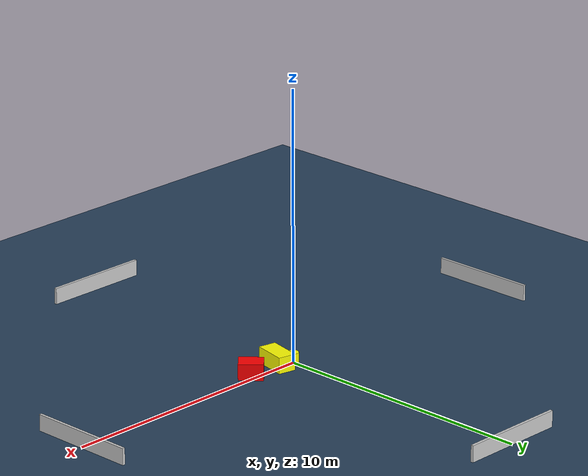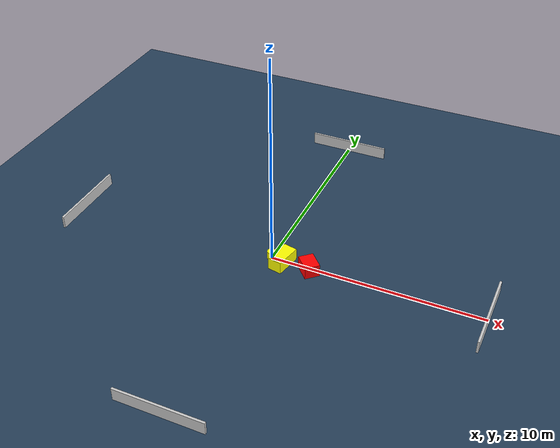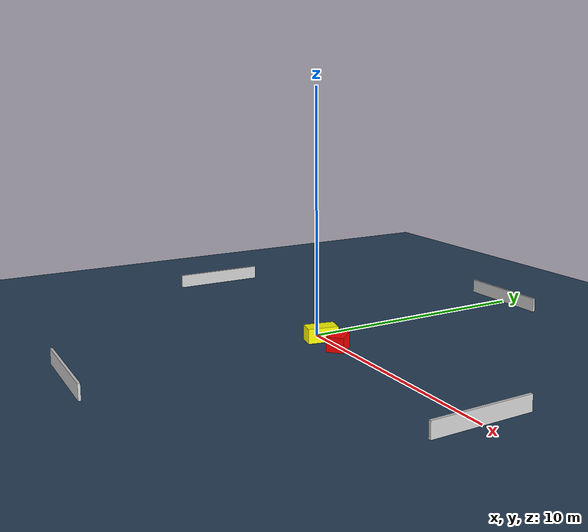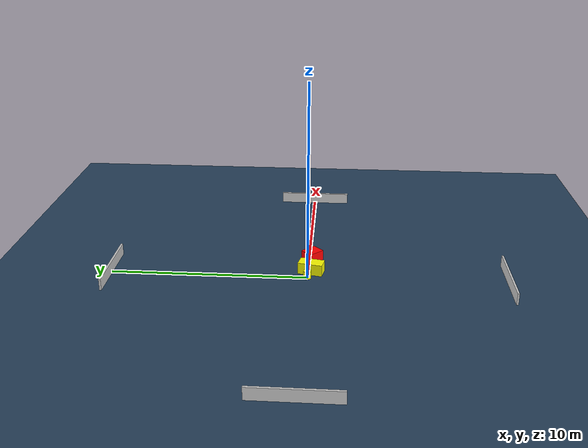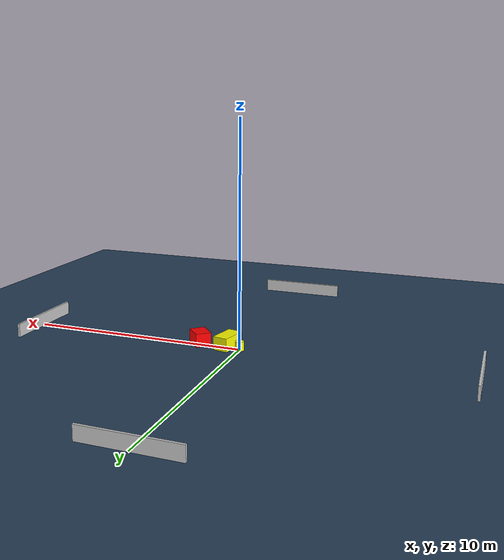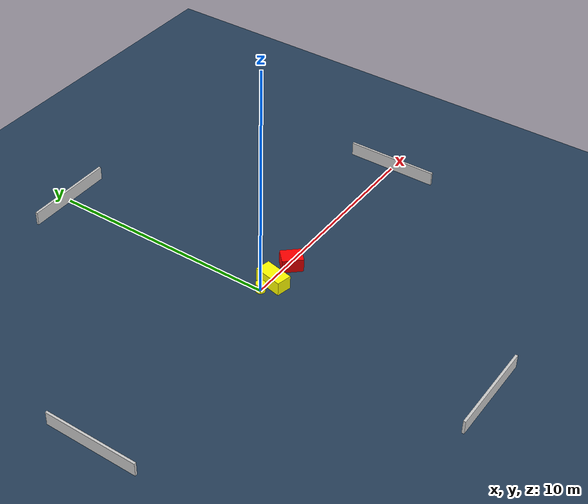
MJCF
<?xml version="1.0" ?>
<mujoco model="generated_environment">
  <option timestep="0.01" integrator="RK4" cone="elliptic"/>
  <default>
    <geom density="1"/>
  </default>
  <asset>
    <texture builtin="gradient" height="3072" name="skybox" rgb1="0.3 0.5 0.7" rgb2="0 0 0" type="skybox" width="512"/>
    <texture builtin="checker" height="300" name="groundplane" rgb1="0.2 0.3 0.4" rgb2="0.1 0.2 0.3" type="2d" width="300"/>
    <material name="groundplane" reflectance="0.2" texrepeat="5 5" texture="groundplane"/>
  </asset>
  <worldbody>
    <light dir="0 0 -1" directional="true" pos="0 0 1.5"/>
    <geom condim="3" friction="0.5 0.005 0.001" material="groundplane" name="floor" pos="0 0 0" size="0 0 0.05" type="plane"/>
    <body name="walls">
      <geom name="wall_1" condim="4" pos="-10.0 0.0 0.3" rgba="0.800000011920929 0.800000011920929 0.800000011920929 1.0" size="0.05 2.0 0.3" type="box"/>
      <geom name="wall_2" condim="4" pos="10.0 0.0 0.3" rgba="0.800000011920929 0.800000011920929 0.800000011920929 1.0" size="0.05 2.0 0.3" type="box"/>
      <geom name="wall_3" condim="4" pos="0.0 -10.0 0.3" rgba="0.800000011920929 0.800000011920929 0.800000011920929 1.0" size="2.0 0.05 0.3" type="box"/>
      <geom name="wall_4" condim="4" pos="0.0 10.0 0.3" rgba="0.800000011920929 0.800000011920929 0.800000011920929 1.0" size="2.0 0.05 0.3" type="box"/>
    </body>
    <body name="robot">
      <joint name="joint_x" type="slide" pos="0 0 0" axis="1 0 0"/>
      <joint name="joint_y" type="slide" pos="0 0 0" axis="0 1 0"/>
      <geom name="robot" type="cylinder" pos="0.0 0.0 0.2" size="0.2 0.2 0.0" mass="5.0" friction="1.0 0.005 0.0001" condim="4" rgba="1.0 1.0 0.0 1.0"/>
    </body>
    <body name="obstacle_1_movable">
      <geom name="obstacle_1_movable" condim="4" pos="0.618879062863936 -0.17293552977844262 0.3" euler="0 0 348.03388300516286" friction="0.0 0.005 0.001" rgba="1.0 1.0 0.0 1.0" size="0.3326357267971711 0.623935538672781 0.3" type="box" mass="0.1"/>
      <joint type="free"/>
    </body>
    <body name="obstacle_2_static">
      <geom name="obstacle_2_static" condim="4" pos="1.9126288871090893 -0.16532287264579376 0.3" euler="0 0 222.99275998807087" friction="0.0 0.005 0.001" rgba="1.0 0.0 0.0 1.0" size="0.35052184690166954 0.44439105056378125 0.3" type="box"/>
    </body>
  </worldbody>
  <actuator>
    <motor name="actuator_x" joint="joint_x" gear="1" ctrlrange="-1 1"/>
    <motor name="actuator_y" joint="joint_y" gear="1" ctrlrange="-1 1"/>
  </actuator>
</mujoco>
